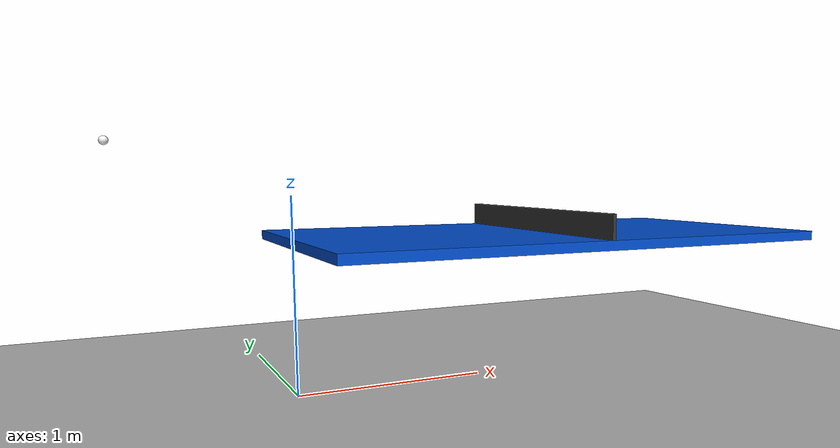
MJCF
<mujoco model="ball_launch">
    <compiler angle="degree" coordinate="local"/>
    <option timestep="0.001" gravity="0 0 -9.81" viscosity="0"/>

    <asset>
        <material name="table_mat" rgba="0.0 0.3 0.8 1"/>
        <material name="net_mat" rgba="0.2 0.2 0.2 1"/>
        <material name="ball_mat" rgba="1 1 1 1"/>
        <material name="ground_mat" rgba="0.7 0.7 0.7 1"/>
    </asset>

    <worldbody>
        <light diffuse=".8 .8 .8" pos="1.37 0 2" dir="0 0 -1"/>
        <geom name="ground" type="plane" size="5 5 0.1" material="ground_mat"/>

        <!-- Standard table tennis table (regulation size) -->
        <body name="table" pos="1.37 0 0.76">
            <!-- Table surface: 2.74m x 1.525m x 0.05m thick -->
            <geom name="table_geom" type="box" size="1.37 0.7625 0.025" material="table_mat"/>
        </body>

        <!-- Standard table tennis net -->
        <body name="net" pos="1.37 0 0.8375">
            <!-- Net: 15.25cm high, spanning full table width -->
            <geom name="net_geom" type="box" size="0.01 0.7625 0.0763" material="net_mat"/>
        </body>

        <!-- Table tennis ball (40mm diameter, 2.7g mass) -->
        <body name="ball_body" pos="-0.8 0 1.25">
            <freejoint name="ball_free"/>
            <!-- Standard ping pong ball: 40mm diameter, 2.7g mass -->
            <geom name="ball" type="sphere" size="0.02" mass="0.0027" material="ball_mat"/>
        </body>
    </worldbody>

    <contact>
        <!-- Ball-table contact: realistic ping pong ball physics -->
        <pair geom1="ball" geom2="table_geom"
              solref="0.001 1" solimp="0.9 0.95 0.001" friction="0.6 0.02 0.001"/>

        <!-- Ball-net contact: softer collision -->
        <pair geom1="ball" geom2="net_geom"
              solref="0.01 1" solimp="0.5 0.7 0.01" friction="0.8 0.05 0.001"/>

        <!-- Ball-ground contact: floor bounce -->
        <pair geom1="ball" geom2="ground"
              solref="0.002 1" solimp="0.8 0.9 0.001" friction="0.3 0.01 0.001"/>
    </contact>
</mujoco>
